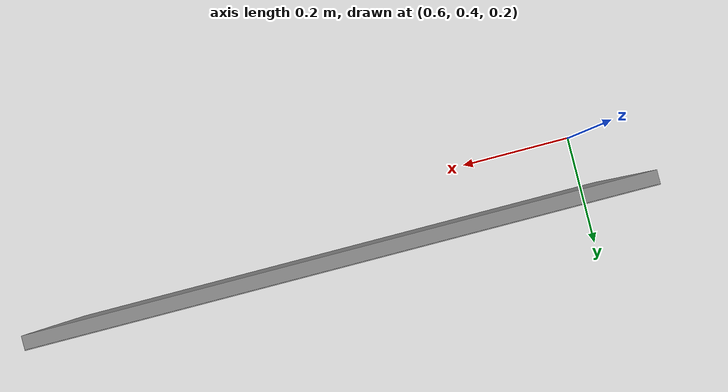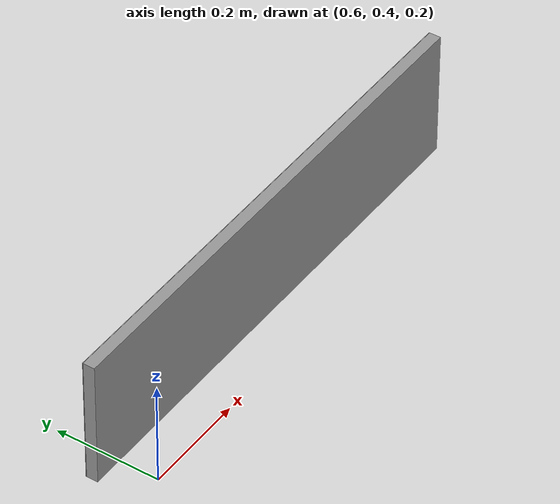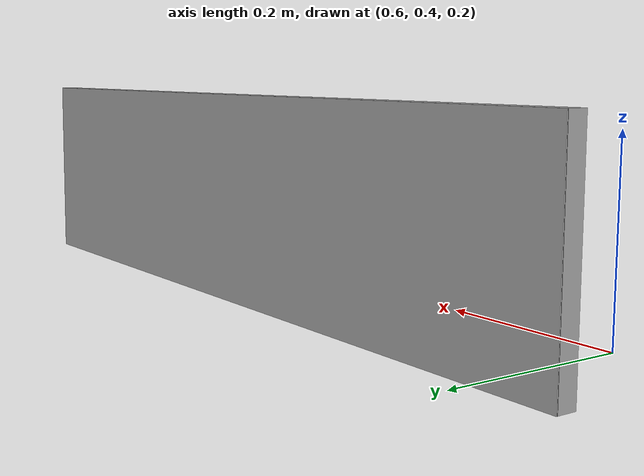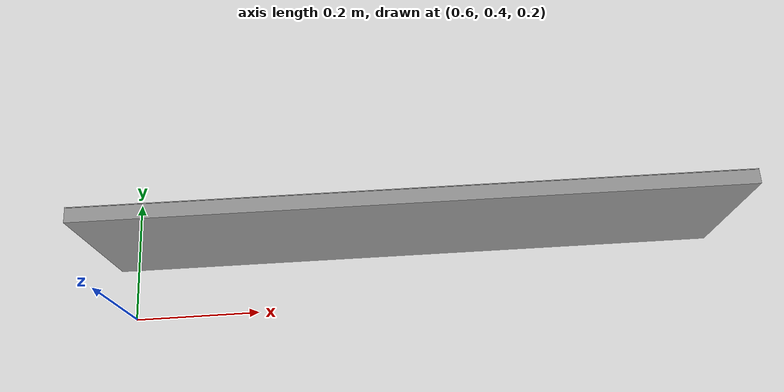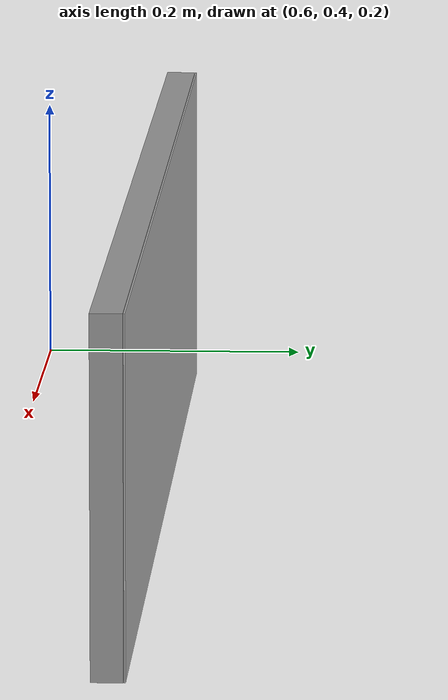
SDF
<?xml version='1.0'?>
<sdf version='1.7'>
  <model name='3'>
    <static>true</static>

    <pose>1.063840 0.503470 0.297706 0 0 0</pose>

    <link name='link_2'>
      <pose>0 0 0 0 0 0</pose>

      <visual name='visual'>
        <geometry>
          <box>
            <size>1.00337 0.022003 0.247839</size>
          </box>
        </geometry>
        <material>
          <script>
            <uri>file://media/materials/scripts/gazebo.material</uri>
            <name>Gazebo/Grey</name>
          </script>
        </material>
      </visual>

      <visual name='signboard_visual'>
        <pose>0 0.012 0 0 0 0</pose>
        <geometry>
          <box>
            <size>1.00337 0.001 0.247839</size>
          </box>
        </geometry>
        <material>
          <script>
            <uri>model://3/materials/scripts</uri>
            <uri>model://3/materials/textures</uri>
            <name>Model_3/Texture</name>
          </script>
        </material>
      </visual>

    </link>
    <allow_auto_disable>1</allow_auto_disable>
  </model>
</sdf>
